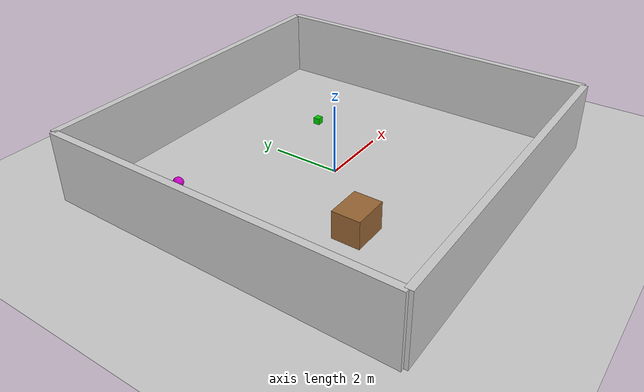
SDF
<?xml version="1.0" ?>
<sdf version="1.7">
  <world name="simple_room">
    <!-- Include the sun for lighting -->
    <include>
      <uri>model://sun</uri>
    </include>

    <!-- Include ground plane -->
    <include>
      <uri>model://ground_plane</uri>
    </include>

    <!-- Physics engine configuration -->
    <physics name="default_physics" type="ode">
      <gravity>0 0 -9.81</gravity>
      <max_step_size>0.001</max_step_size>
      <real_time_factor>1.0</real_time_factor>
      <real_time_update_rate>1000</real_time_update_rate>
      <ode>
        <solver>
          <type>quick</type>
          <iters>10</iters>
          <sor>1.3</sor>
        </solver>
        <constraints>
          <cfm>0.0</cfm>
          <erp>0.2</erp>
          <contact_max_correcting_vel>100.0</contact_max_correcting_vel>
          <contact_surface_layer>0.001</contact_surface_layer>
        </constraints>
      </ode>
    </physics>

    <!-- Simple room with walls -->
    <!-- Wall 1: North wall -->
    <model name="north_wall">
      <pose>0 5 1 0 0 0</pose>
      <static>true</static>
      <link name="link">
        <collision name="collision">
          <geometry>
            <box>
              <size>10 0.2 2</size>
            </box>
          </geometry>
        </collision>
        <visual name="visual">
          <geometry>
            <box>
              <size>10 0.2 2</size>
            </box>
          </geometry>
          <material>
            <ambient>0.8 0.8 0.8 1</ambient>
            <diffuse>0.8 0.8 0.8 1</diffuse>
            <specular>0.1 0.1 0.1 1</specular>
          </material>
        </visual>
      </link>
    </model>

    <!-- Wall 2: South wall -->
    <model name="south_wall">
      <pose>0 -5 1 0 0 0</pose>
      <static>true</static>
      <link name="link">
        <collision name="collision">
          <geometry>
            <box>
              <size>10 0.2 2</size>
            </box>
          </geometry>
        </collision>
        <visual name="visual">
          <geometry>
            <box>
              <size>10 0.2 2</size>
            </box>
          </geometry>
          <material>
            <ambient>0.8 0.8 0.8 1</ambient>
            <diffuse>0.8 0.8 0.8 1</diffuse>
            <specular>0.1 0.1 0.1 1</specular>
          </material>
        </visual>
      </link>
    </model>

    <!-- Wall 3: East wall -->
    <model name="east_wall">
      <pose>5 0 1 0 0 1.5707</pose>
      <static>true</static>
      <link name="link">
        <collision name="collision">
          <geometry>
            <box>
              <size>10 0.2 2</size>
            </box>
          </geometry>
        </collision>
        <visual name="visual">
          <geometry>
            <box>
              <size>10 0.2 2</size>
            </box>
          </geometry>
          <material>
            <ambient>0.8 0.8 0.8 1</ambient>
            <diffuse>0.8 0.8 0.8 1</diffuse>
            <specular>0.1 0.1 0.1 1</specular>
          </material>
        </visual>
      </link>
    </model>

    <!-- Wall 4: West wall -->
    <model name="west_wall">
      <pose>-5 0 1 0 0 1.5707</pose>
      <static>true</static>
      <link name="link">
        <collision name="collision">
          <geometry>
            <box>
              <size>10 0.2 2</size>
            </box>
          </geometry>
        </collision>
        <visual name="visual">
          <geometry>
            <box>
              <size>10 0.2 2</size>
            </box>
          </geometry>
          <material>
            <ambient>0.8 0.8 0.8 1</ambient>
            <diffuse>0.8 0.8 0.8 1</diffuse>
            <specular>0.1 0.1 0.1 1</specular>
          </material>
        </visual>
      </link>
    </model>

    <!-- Add some simple objects for the robot to interact with -->
    <!-- Table -->
    <model name="table">
      <pose>-2 -2 0.4 0 0 0</pose>
      <link name="link">
        <collision name="collision">
          <geometry>
            <box>
              <size>1.0 0.8 0.8</size>
            </box>
          </geometry>
        </collision>
        <visual name="visual">
          <geometry>
            <box>
              <size>1.0 0.8 0.8</size>
            </box>
          </geometry>
          <material>
            <ambient>0.6 0.4 0.2 1</ambient>
            <diffuse>0.6 0.4 0.2 1</diffuse>
            <specular>0.1 0.1 0.1 1</specular>
          </material>
        </visual>
        <inertial>
          <mass>10.0</mass>
          <inertia>
            <ixx>1.0</ixx>
            <ixy>0.0</ixy>
            <ixz>0.0</ixz>
            <iyy>1.0</iyy>
            <iyz>0.0</iyz>
            <izz>1.0</izz>
          </inertia>
        </inertial>
      </link>
    </model>

    <!-- Cube object -->
    <model name="cube">
      <pose>2 2 0.1 0 0 0</pose>
      <link name="link">
        <collision name="collision">
          <geometry>
            <box>
              <size>0.2 0.2 0.2</size>
            </box>
          </geometry>
        </collision>
        <visual name="visual">
          <geometry>
            <box>
              <size>0.2 0.2 0.2</size>
            </box>
          </geometry>
          <material>
            <ambient>0.0 0.8 0.0 1</ambient>
            <diffuse>0.0 0.8 0.0 1</diffuse>
            <specular>0.1 0.1 0.1 1</specular>
          </material>
        </visual>
        <inertial>
          <mass>0.5</mass>
          <inertia>
            <ixx>0.002</ixx>
            <ixy>0.0</ixy>
            <ixz>0.0</ixz>
            <iyy>0.002</iyy>
            <iyz>0.0</iyz>
            <izz>0.002</izz>
          </inertia>
        </inertial>
      </link>
    </model>

    <!-- Sphere object -->
    <model name="sphere">
      <pose>-3 3 0.15 0 0 0</pose>
      <link name="link">
        <collision name="collision">
          <geometry>
            <sphere>
              <radius>0.15</radius>
            </sphere>
          </geometry>
        </collision>
        <visual name="visual">
          <geometry>
            <sphere>
              <radius>0.15</radius>
            </sphere>
          </geometry>
          <material>
            <ambient>0.8 0.0 0.8 1</ambient>
            <diffuse>0.8 0.0 0.8 1</diffuse>
            <specular>0.1 0.1 0.1 1</specular>
          </material>
        </visual>
        <inertial>
          <mass>0.3</mass>
          <inertia>
            <ixx>0.00135</ixx>
            <ixy>0.0</ixy>
            <ixz>0.0</ixz>
            <iyy>0.00135</iyy>
            <iyz>0.0</iyz>
            <izz>0.00135</izz>
          </inertia>
        </inertial>
      </link>
    </model>

  </world>
</sdf>
